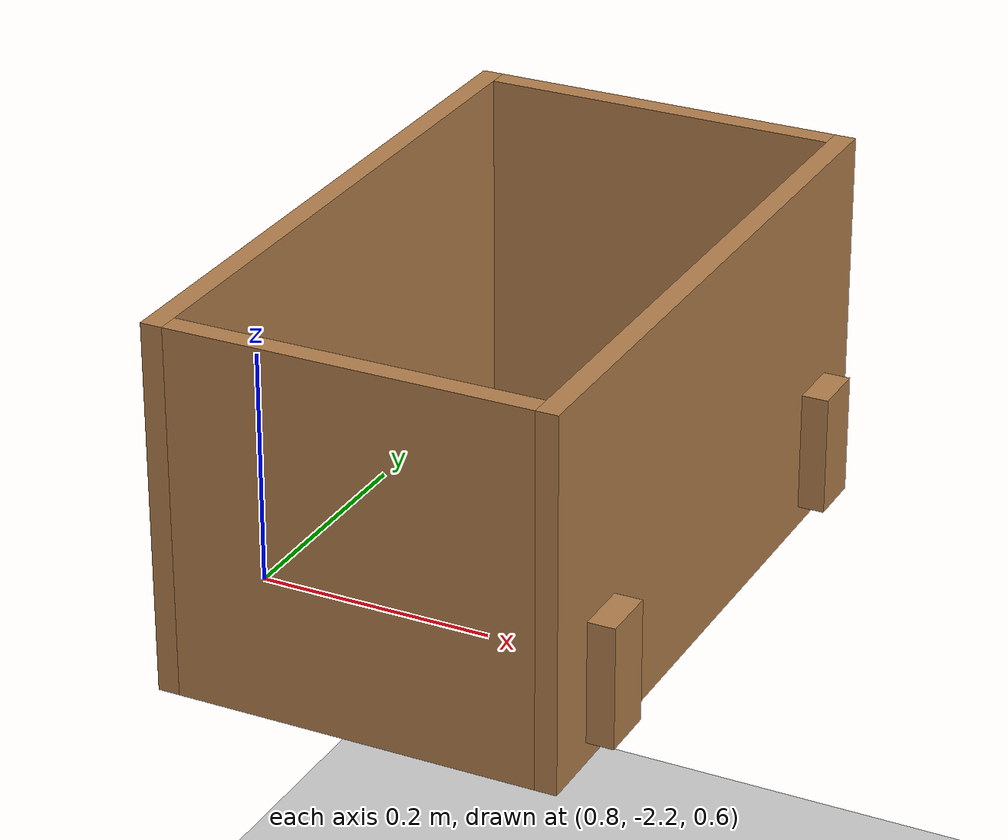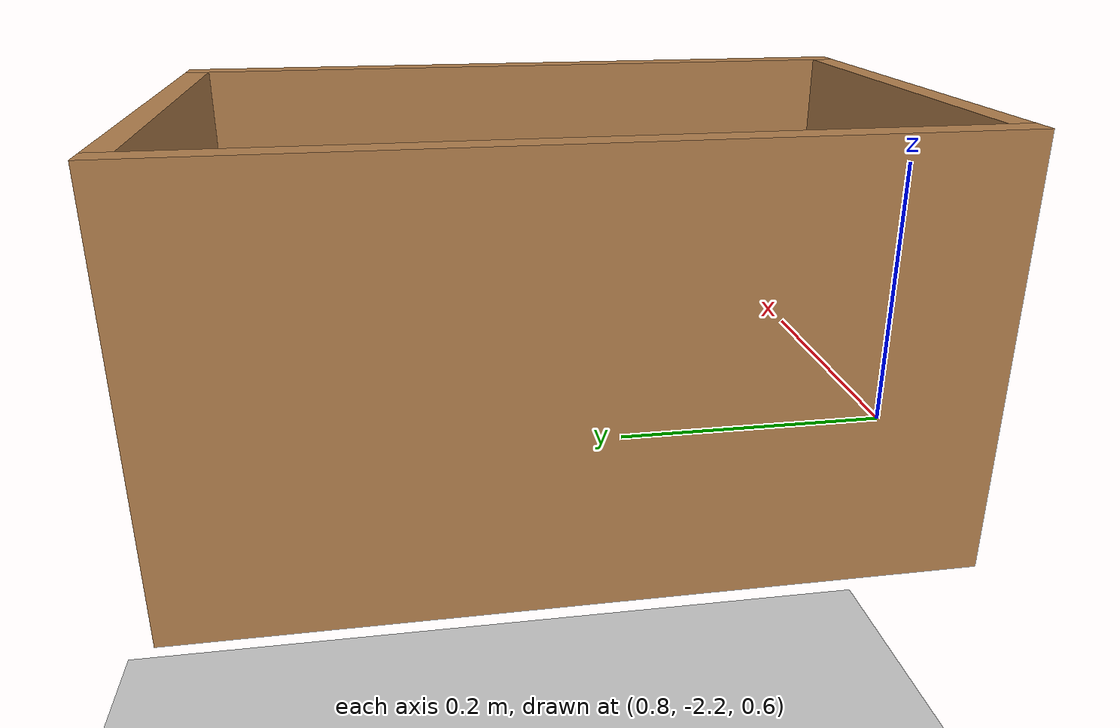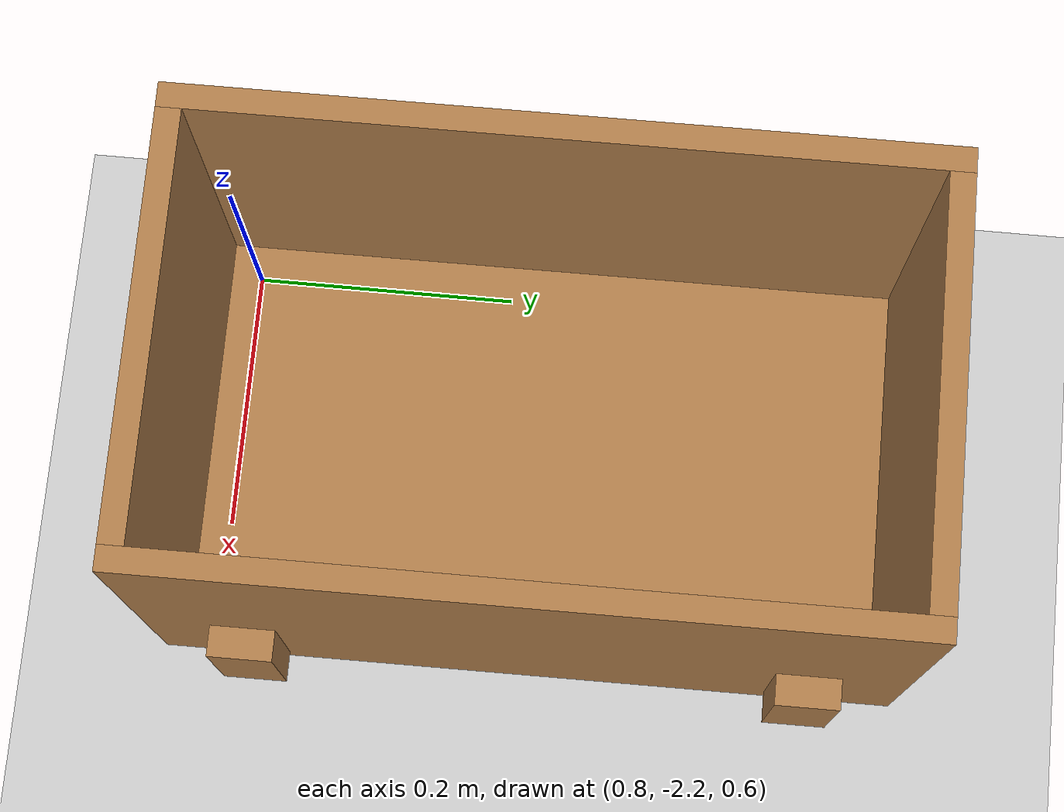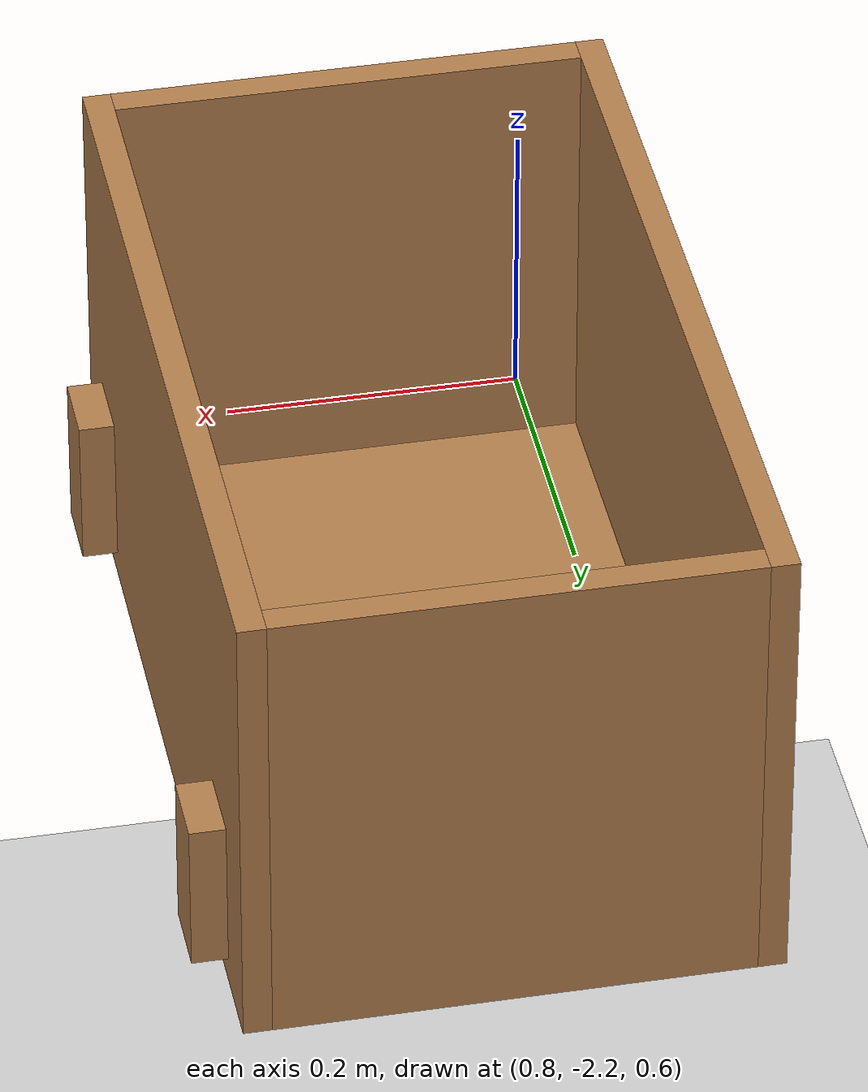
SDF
<sdf version="1.6">
 <world name="default">
  <light name="sun" type="directional">
   <pose>0 0 10 0 -0 0</pose>
   <diffuse>0.8 0.8 0.8 1</diffuse>
   <specular>0.2 0.2 0.2 1</specular>
   <attenuation>
    <range>1000</range>
    <constant>0.9</constant>
    <linear>0.01</linear>
    <quadratic>0.001</quadratic>
   </attenuation>
   <direction>-0.5 0.1 -0.9</direction>
  </light>
  <model name="ground_plane">
   <static>1</static>
   <link name="link">
    <collision name="collision">
     <geometry><plane><normal>0 0 1</normal><size>100 100</size></plane></geometry>
     <surface><friction><ode><mu>100</mu><mu2>50</mu2></ode></friction></surface>
    </collision>
    <visual name="visual">
     <cast_shadows>0</cast_shadows>
     <geometry><plane><normal>0 0 1</normal><size>100 100</size></plane></geometry>
     <material>
      <script><uri>file://media/materials/scripts/gazebo.material</uri><name>Gazebo/Grey</name></script>
     </material>
    </visual>
   </link>
  </model>
  <gravity>0 0 -9.8</gravity>
  <magnetic_field>6e-06 2.3e-05 -4.2e-05</magnetic_field>
  <atmosphere type="adiabatic"/>
  <physics name="default_physics" default="0" type="ode">
   <max_step_size>0.001</max_step_size>
   <real_time_factor>1</real_time_factor>
   <real_time_update_rate>1000</real_time_update_rate>
  </physics>
  <scene><ambient>0.4 0.4 0.4 1</ambient><background>0.7 0.7 0.7 1</background><shadows>1</shadows></scene>
  <spherical_coordinates>
   <surface_model>EARTH_WGS84</surface_model>
   <latitude_deg>0</latitude_deg>
   <longitude_deg>0</longitude_deg>
   <elevation>0</elevation>
   <heading_deg>0</heading_deg>
  </spherical_coordinates>
  <model name="wooden_case">
   <link name="base">
    <pose>-0 0 0.024 0 -0 0</pose>
    <inertial>
     <pose>-0.022184 0 0.171592 0 -0 0</pose>
     <mass>2</mass>
     <inertia>
      <ixx>0.0665052</ixx>
      <ixy>0</ixy>
      <ixz>0</ixz>
      <iyy>0.0168615</iyy>
      <iyz>0</iyz>
      <izz>0.0497647</izz>
     </inertia>
    </inertial>
    <visual name="visual_back">
     <pose>-0.053975 0 0.1778 0 -0 0</pose>
     <geometry><box><size>0.01905 0.5461 0.3175</size></box></geometry>
     <material>
      <script><uri>file://media/materials/scripts/gazebo.material</uri><name>Gazebo/Wood</name></script>
      <shader type="pixel"><normal_map>__default__</normal_map></shader>
      <ambient>1 1 1 1</ambient>
      <diffuse>1 1 1 1</diffuse>
      <specular>0.2 0.2 0.2 1</specular>
      <emissive>0 0 0 1</emissive>
     </material>
    </visual>
    <visual name="visual_bottom">
     <pose>0.1 0 0.009525 0 -0 0</pose>
     <geometry><box><size>0.327 0.5842 0.01905</size></box></geometry>
     <material>
      <script><uri>file://media/materials/scripts/gazebo.material</uri><name>Gazebo/Wood</name></script>
      <shader type="pixel"><normal_map>__default__</normal_map></shader>
      <ambient>1 1 1 1</ambient>
      <diffuse>1 1 1 1</diffuse>
      <specular>0.2 0.2 0.2 1</specular>
      <emissive>0 0 0 1</emissive>
     </material>
    </visual>
    <visual name="visual_top">
     <pose>0.1 0 0.346075 0 -0 0</pose>
     <geometry><box><size>0.327 0.5842 0.01905</size></box></geometry>
     <material>
      <script><uri>file://media/materials/scripts/gazebo.material</uri><name>Gazebo/Wood</name></script>
      <shader type="pixel"><normal_map>__default__</normal_map></shader>
      <ambient>1 1 1 1</ambient>
      <diffuse>1 1 1 1</diffuse>
      <specular>0.2 0.2 0.2 1</specular>
      <emissive>0 0 0 1</emissive>
     </material>
    </visual>
    <visual name="visual_left">
     <pose>0.1 -0.282575 0.1778 0 -0 0</pose>
     <geometry><box><size>0.327 0.01905 0.3175</size></box></geometry>
     <material>
      <script><uri>file://media/materials/scripts/gazebo.material</uri><name>Gazebo/Wood</name></script>
      <shader type="pixel"><normal_map>__default__</normal_map></shader>
      <ambient>1 1 1 1</ambient>
      <diffuse>1 1 1 1</diffuse>
      <specular>0.2 0.2 0.2 1</specular>
      <emissive>0 0 0 1</emissive>
     </material>
    </visual>
    <visual name="visual_right">
     <pose>0.1 0.282575 0.1778 0 -0 0</pose>
     <geometry><box><size>0.327 0.01905 0.3175</size></box></geometry>
     <material>
      <script><uri>file://media/materials/scripts/gazebo.material</uri><name>Gazebo/Wood</name></script>
      <shader type="pixel"><normal_map>__default__</normal_map></shader>
      <ambient>1 1 1 1</ambient>
      <diffuse>1 1 1 1</diffuse>
      <specular>0.2 0.2 0.2 1</specular>
      <emissive>0 0 0 1</emissive>
     </material>
    </visual>
    <visual name="visual_block_left">
     <pose>0.0095 -0.2151 -0.012 0 -0 0</pose>
     <geometry><box><size>0.108 0.05 0.024</size></box></geometry>
     <material>
      <script><uri>file://media/materials/scripts/gazebo.material</uri><name>Gazebo/Wood</name></script>
      <shader type="pixel"><normal_map>__default__</normal_map></shader>
      <ambient>1 1 1 1</ambient>
      <diffuse>1 1 1 1</diffuse>
      <specular>0.2 0.2 0.2 1</specular>
      <emissive>0 0 0 1</emissive>
     </material>
    </visual>
    <visual name="visual_block_right">
     <pose>0.0095 0.2151 -0.012 0 -0 0</pose>
     <geometry><box><size>0.108 0.05 0.024</size></box></geometry>
     <material>
      <script><uri>file://media/materials/scripts/gazebo.material</uri><name>Gazebo/Wood</name></script>
      <shader type="pixel"><normal_map>__default__</normal_map></shader>
      <ambient>1 1 1 1</ambient>
      <diffuse>1 1 1 1</diffuse>
      <specular>0.2 0.2 0.2 1</specular>
      <emissive>0 0 0 1</emissive>
     </material>
    </visual>
    <collision name="collision_back">
     <pose>-0.053975 0 0.1778 0 -0 0</pose>
     <geometry><box><size>0.01905 0.5461 0.3175</size></box></geometry>
     <surface>
      <friction>
       <ode><mu>1</mu><mu2>1</mu2><fdir1>0 0 0</fdir1><slip1>0</slip1><slip2>0</slip2></ode>
       <torsional>
        <coefficient>1</coefficient>
        <patch_radius>0</patch_radius>
        <surface_radius>0.01</surface_radius>
        <use_patch_radius>0</use_patch_radius>
        <ode><slip>0</slip></ode>
       </torsional>
      </friction>
      <bounce><restitution_coefficient>0</restitution_coefficient><threshold>1e+06</threshold></bounce>
      <contact>
       <collide_without_contact>0</collide_without_contact>
       <collide_without_contact_bitmask>1</collide_without_contact_bitmask>
       <collide_bitmask>1</collide_bitmask>
       <ode>
        <soft_cfm>0</soft_cfm>
        <soft_erp>0.2</soft_erp>
        <kp>100000</kp>
        <kd>100</kd>
        <max_vel>100</max_vel>
        <min_depth>0.001</min_depth>
       </ode>
       <bullet>
        <split_impulse>1</split_impulse>
        <split_impulse_penetration_threshold>-0.01</split_impulse_penetration_threshold>
        <soft_cfm>0</soft_cfm>
        <soft_erp>0.2</soft_erp>
        <kp>100000</kp>
        <kd>100</kd>
       </bullet>
      </contact>
     </surface>
    </collision>
    <collision name="collision_bottom">
     <pose>0.1 0 0.009525 0 -0 0</pose>
     <geometry><box><size>0.327 0.5842 0.01905</size></box></geometry>
     <surface>
      <friction>
       <ode><mu>1</mu><mu2>1</mu2><fdir1>0 0 0</fdir1><slip1>0</slip1><slip2>0</slip2></ode>
       <torsional>
        <coefficient>1</coefficient>
        <patch_radius>0</patch_radius>
        <surface_radius>0.01</surface_radius>
        <use_patch_radius>0</use_patch_radius>
        <ode><slip>0</slip></ode>
       </torsional>
      </friction>
      <bounce><restitution_coefficient>0</restitution_coefficient><threshold>1e+06</threshold></bounce>
      <contact>
       <collide_without_contact>0</collide_without_contact>
       <collide_without_contact_bitmask>1</collide_without_contact_bitmask>
       <collide_bitmask>1</collide_bitmask>
       <ode>
        <soft_cfm>0</soft_cfm>
        <soft_erp>0.2</soft_erp>
        <kp>100000</kp>
        <kd>100</kd>
        <max_vel>100</max_vel>
        <min_depth>0.001</min_depth>
       </ode>
       <bullet>
        <split_impulse>1</split_impulse>
        <split_impulse_penetration_threshold>-0.01</split_impulse_penetration_threshold>
        <soft_cfm>0</soft_cfm>
        <soft_erp>0.2</soft_erp>
        <kp>100000</kp>
        <kd>100</kd>
       </bullet>
      </contact>
     </surface>
    </collision>
    <collision name="collision_top">
     <pose>0.1 0 0.346075 0 -0 0</pose>
     <geometry><box><size>0.327 0.5842 0.01905</size></box></geometry>
     <surface>
      <friction>
       <ode><mu>1</mu><mu2>1</mu2><fdir1>0 0 0</fdir1><slip1>0</slip1><slip2>0</slip2></ode>
       <torsional>
        <coefficient>1</coefficient>
        <patch_radius>0</patch_radius>
        <surface_radius>0.01</surface_radius>
        <use_patch_radius>0</use_patch_radius>
        <ode><slip>0</slip></ode>
       </torsional>
      </friction>
      <bounce><restitution_coefficient>0</restitution_coefficient><threshold>1e+06</threshold></bounce>
      <contact>
       <collide_without_contact>0</collide_without_contact>
       <collide_without_contact_bitmask>1</collide_without_contact_bitmask>
       <collide_bitmask>1</collide_bitmask>
       <ode>
        <soft_cfm>0</soft_cfm>
        <soft_erp>0.2</soft_erp>
        <kp>100000</kp>
        <kd>100</kd>
        <max_vel>100</max_vel>
        <min_depth>0.001</min_depth>
       </ode>
       <bullet>
        <split_impulse>1</split_impulse>
        <split_impulse_penetration_threshold>-0.01</split_impulse_penetration_threshold>
        <soft_cfm>0</soft_cfm>
        <soft_erp>0.2</soft_erp>
        <kp>100000</kp>
        <kd>100</kd>
       </bullet>
      </contact>
     </surface>
    </collision>
    <collision name="collision_left">
     <pose>0.1 -0.282575 0.1778 0 -0 0</pose>
     <geometry><box><size>0.327 0.01905 0.3175</size></box></geometry>
     <surface>
      <friction>
       <ode><mu>1</mu><mu2>1</mu2><fdir1>0 0 0</fdir1><slip1>0</slip1><slip2>0</slip2></ode>
       <torsional>
        <coefficient>1</coefficient>
        <patch_radius>0</patch_radius>
        <surface_radius>0.01</surface_radius>
        <use_patch_radius>0</use_patch_radius>
        <ode><slip>0</slip></ode>
       </torsional>
      </friction>
      <bounce><restitution_coefficient>0</restitution_coefficient><threshold>1e+06</threshold></bounce>
      <contact>
       <collide_without_contact>0</collide_without_contact>
       <collide_without_contact_bitmask>1</collide_without_contact_bitmask>
       <collide_bitmask>1</collide_bitmask>
       <ode>
        <soft_cfm>0</soft_cfm>
        <soft_erp>0.2</soft_erp>
        <kp>100000</kp>
        <kd>100</kd>
        <max_vel>100</max_vel>
        <min_depth>0.001</min_depth>
       </ode>
       <bullet>
        <split_impulse>1</split_impulse>
        <split_impulse_penetration_threshold>-0.01</split_impulse_penetration_threshold>
        <soft_cfm>0</soft_cfm>
        <soft_erp>0.2</soft_erp>
        <kp>100000</kp>
        <kd>100</kd>
       </bullet>
      </contact>
     </surface>
    </collision>
    <collision name="collision_right">
     <pose>0.1 0.282575 0.1778 0 -0 0</pose>
     <geometry><box><size>0.327 0.01905 0.3175</size></box></geometry>
     <surface>
      <friction>
       <ode><mu>1</mu><mu2>1</mu2><fdir1>0 0 0</fdir1><slip1>0</slip1><slip2>0</slip2></ode>
       <torsional>
        <coefficient>1</coefficient>
        <patch_radius>0</patch_radius>
        <surface_radius>0.01</surface_radius>
        <use_patch_radius>0</use_patch_radius>
        <ode><slip>0</slip></ode>
       </torsional>
      </friction>
      <bounce><restitution_coefficient>0</restitution_coefficient><threshold>1e+06</threshold></bounce>
      <contact>
       <collide_without_contact>0</collide_without_contact>
       <collide_without_contact_bitmask>1</collide_without_contact_bitmask>
       <collide_bitmask>1</collide_bitmask>
       <ode>
        <soft_cfm>0</soft_cfm>
        <soft_erp>0.2</soft_erp>
        <kp>100000</kp>
        <kd>100</kd>
        <max_vel>100</max_vel>
        <min_depth>0.001</min_depth>
       </ode>
       <bullet>
        <split_impulse>1</split_impulse>
        <split_impulse_penetration_threshold>-0.01</split_impulse_penetration_threshold>
        <soft_cfm>0</soft_cfm>
        <soft_erp>0.2</soft_erp>
        <kp>100000</kp>
        <kd>100</kd>
       </bullet>
      </contact>
     </surface>
    </collision>
    <collision name="collision_block_left">
     <pose>0.0095 -0.2151 -0.012 0 -0 0</pose>
     <geometry><box><size>0.108 0.05 0.024</size></box></geometry>
     <surface>
      <friction>
       <ode><mu>1</mu><mu2>1</mu2><fdir1>0 0 0</fdir1><slip1>0</slip1><slip2>0</slip2></ode>
       <torsional>
        <coefficient>1</coefficient>
        <patch_radius>0</patch_radius>
        <surface_radius>0.01</surface_radius>
        <use_patch_radius>0</use_patch_radius>
        <ode><slip>0</slip></ode>
       </torsional>
      </friction>
      <bounce><restitution_coefficient>0</restitution_coefficient><threshold>1e+06</threshold></bounce>
      <contact>
       <collide_without_contact>0</collide_without_contact>
       <collide_without_contact_bitmask>1</collide_without_contact_bitmask>
       <collide_bitmask>1</collide_bitmask>
       <ode>
        <soft_cfm>0</soft_cfm>
        <soft_erp>0.2</soft_erp>
        <kp>100000</kp>
        <kd>100</kd>
        <max_vel>100</max_vel>
        <min_depth>0.001</min_depth>
       </ode>
       <bullet>
        <split_impulse>1</split_impulse>
        <split_impulse_penetration_threshold>-0.01</split_impulse_penetration_threshold>
        <soft_cfm>0</soft_cfm>
        <soft_erp>0.2</soft_erp>
        <kp>100000</kp>
        <kd>100</kd>
       </bullet>
      </contact>
     </surface>
    </collision>
    <collision name="collision_block_right">
     <pose>0.0095 0.2151 -0.012 0 -0 0</pose>
     <geometry><box><size>0.108 0.05 0.024</size></box></geometry>
     <surface>
      <friction>
       <ode><mu>1</mu><mu2>1</mu2><fdir1>0 0 0</fdir1><slip1>0</slip1><slip2>0</slip2></ode>
       <torsional>
        <coefficient>1</coefficient>
        <patch_radius>0</patch_radius>
        <surface_radius>0.01</surface_radius>
        <use_patch_radius>0</use_patch_radius>
        <ode><slip>0</slip></ode>
       </torsional>
      </friction>
      <bounce><restitution_coefficient>0</restitution_coefficient><threshold>1e+06</threshold></bounce>
      <contact>
       <collide_without_contact>0</collide_without_contact>
       <collide_without_contact_bitmask>1</collide_without_contact_bitmask>
       <collide_bitmask>1</collide_bitmask>
       <ode>
        <soft_cfm>0</soft_cfm>
        <soft_erp>0.2</soft_erp>
        <kp>100000</kp>
        <kd>100</kd>
        <max_vel>100</max_vel>
        <min_depth>0.001</min_depth>
       </ode>
       <bullet>
        <split_impulse>1</split_impulse>
        <split_impulse_penetration_threshold>-0.01</split_impulse_penetration_threshold>
        <soft_cfm>0</soft_cfm>
        <soft_erp>0.2</soft_erp>
        <kp>100000</kp>
        <kd>100</kd>
       </bullet>
      </contact>
     </surface>
    </collision>
   </link>
   <static>0</static>
   <pose>1.10882 -1.9618 0.572282 -2.61948 -1.57077 2.62402</pose>
  </model>
 </world>
</sdf>
